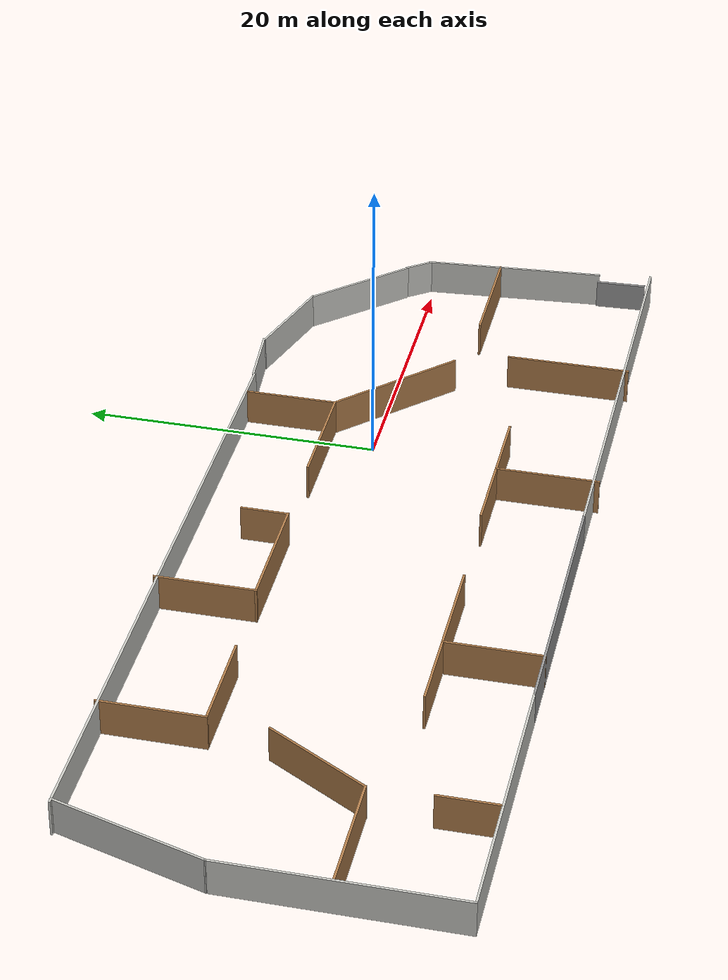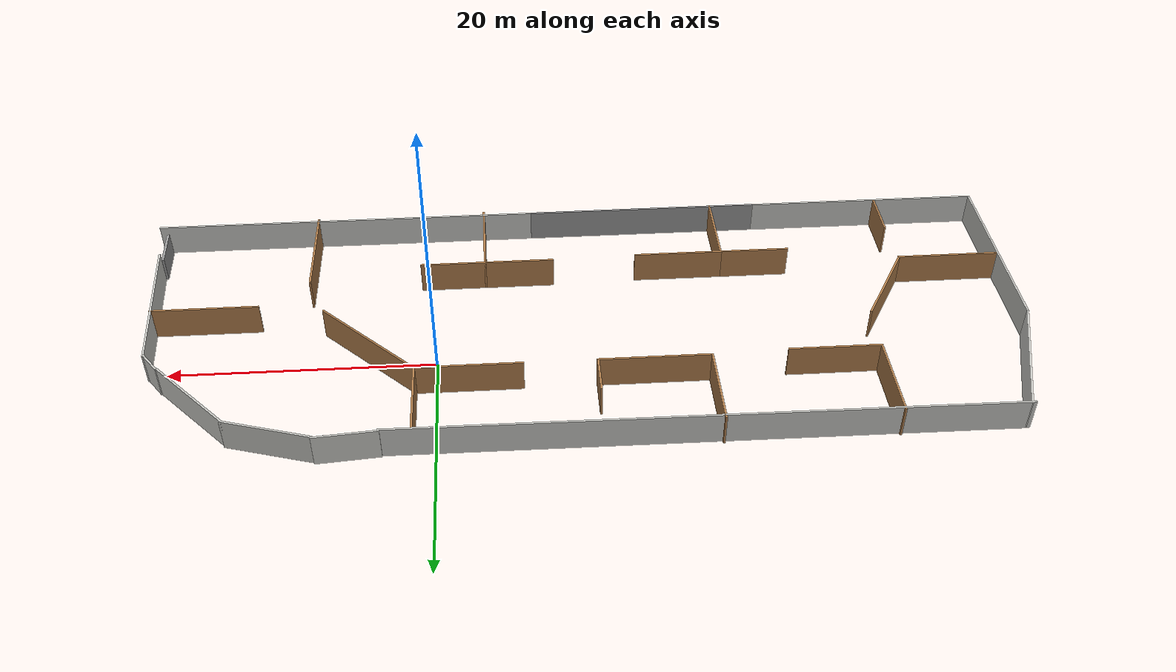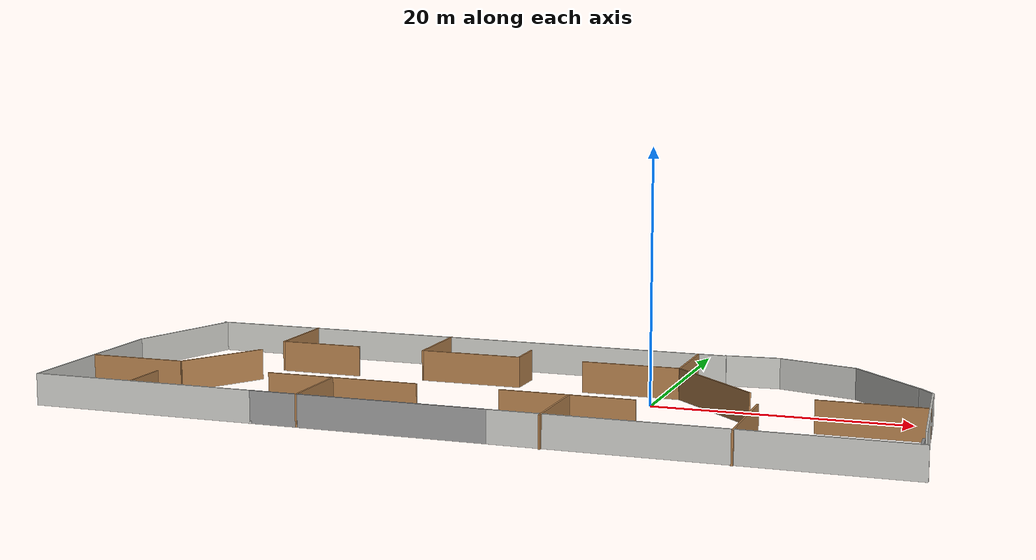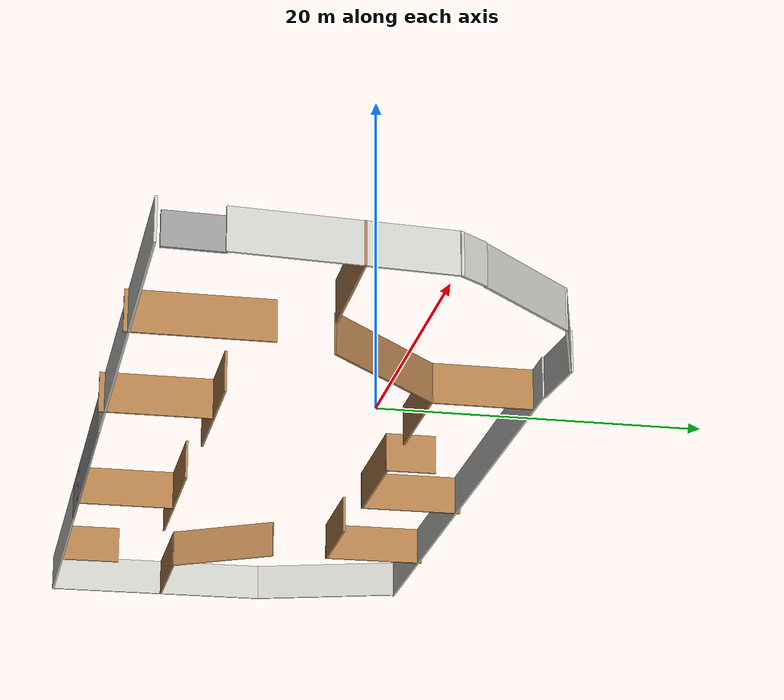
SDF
<?xml version='1.0'?>
<sdf version='1.6'>
  <model name='building_1st_floor'>
    <pose frame=''>-10.9973 -3.15186 0 0 -0 0</pose>
    <link name='Door_0'>
      <collision name='Door_0_Collision'>
        <geometry>
          <box>
            <size>3.46565 0.2 2</size>
          </box>
        </geometry>
        <pose frame=''>0 0 1 0 -0 0</pose>
      </collision>
      <visual name='Door_0_Visual'>
        <pose frame=''>0 0 1 0 -0 0</pose>
        <geometry>
          <box>
            <size>3.46565 0.2 2</size>
          </box>
        </geometry>
        <material>
          <script>
            <uri>file://media/materials/scripts/gazebo.material</uri>
            <name>Gazebo/Grey</name>
          </script>
        </material>
      </visual>
      <pose frame=''>33.0384 -10.5003 0 0 -0 1.61384</pose>
    </link>
    <link name='Wall_0'>
      <collision name='Wall_0_Collision'>
        <geometry>
          <box>
            <size>10.505 0.15 2.5</size>
          </box>
        </geometry>
        <pose frame=''>0 0 1.25 0 -0 0</pose>
      </collision>
      <visual name='Wall_0_Visual'>
        <pose frame=''>0 0 1.25 0 -0 0</pose>
        <geometry>
          <box>
            <size>10.505 0.15 2.5</size>
          </box>
        </geometry>
        <material>
          <script>
            <uri>file://media/materials/scripts/gazebo.material</uri>
            <name>Gazebo/CeilingTiled</name>
          </script>
          <ambient>1 1 1 1</ambient>
        </material>
        <meta>
          <layer>0</layer>
        </meta>
      </visual>
      <pose frame=''>-32.1544 7.76475 0 0 -0 1.2796</pose>
    </link>
    <link name='Wall_1'>
      <collision name='Wall_1_Collision'>
        <geometry>
          <box>
            <size>45.8467 0.15 2.5</size>
          </box>
        </geometry>
        <pose frame=''>0 0 1.25 0 -0 0</pose>
      </collision>
      <visual name='Wall_1_Visual'>
        <pose frame=''>0 0 1.25 0 -0 0</pose>
        <geometry>
          <box>
            <size>45.8467 0.15 2.5</size>
          </box>
        </geometry>
        <material>
          <script>
            <uri>file://media/materials/scripts/gazebo.material</uri>
            <name>Gazebo/CeilingTiled</name>
          </script>
          <ambient>1 1 1 1</ambient>
        </material>
        <meta>
          <layer>0</layer>
        </meta>
      </visual>
      <pose frame=''>-8.06761 12.564 0 0 0 -0.007014</pose>
    </link>
    <link name='Wall_10'>
      <collision name='Wall_10_Collision'>
        <geometry>
          <box>
            <size>18.5 0.15 2.5</size>
          </box>
        </geometry>
        <pose frame=''>0 0 1.25 0 -0 0</pose>
      </collision>
      <visual name='Wall_10_Visual'>
        <pose frame=''>0 0 1.25 0 -0 0</pose>
        <geometry>
          <box>
            <size>18.5 0.15 2.5</size>
          </box>
        </geometry>
        <material>
          <script>
            <uri>file://media/materials/scripts/gazebo.material</uri>
            <name>Gazebo/CeilingTiled</name>
          </script>
          <ambient>1 1 1 1</ambient>
        </material>
        <meta>
          <layer>0</layer>
        </meta>
      </visual>
      <pose frame=''>-24.4658 -12.5448 0 0 -0 0</pose>
    </link>
    <link name='Wall_11'>
      <collision name='Wall_11_Collision'>
        <geometry>
          <box>
            <size>18.75 0.15 2.5</size>
          </box>
        </geometry>
        <pose frame=''>0 0 1.25 0 -0 0</pose>
      </collision>
      <visual name='Wall_11_Visual'>
        <pose frame=''>0 0 1.25 0 -0 0</pose>
        <geometry>
          <box>
            <size>18.75 0.15 2.5</size>
          </box>
        </geometry>
        <material>
          <script>
            <uri>file://media/materials/scripts/gazebo.material</uri>
            <name>Gazebo/Grey</name>
          </script>
          <ambient>1 1 1 1</ambient>
        </material>
        <meta>
          <layer>0</layer>
        </meta>
      </visual>
      <pose frame=''>-5.99081 -12.5448 0 0 -0 0</pose>
    </link>
    <link name='Wall_12'>
      <collision name='Wall_12_Collision'>
        <geometry>
          <box>
            <size>30.5 0.15 2.5</size>
          </box>
        </geometry>
        <pose frame=''>0 0 1.25 0 -0 0</pose>
      </collision>
      <visual name='Wall_12_Visual'>
        <pose frame=''>0 0 1.25 0 -0 0</pose>
        <geometry>
          <box>
            <size>30.5 0.15 2.5</size>
          </box>
        </geometry>
        <material>
          <script>
            <uri>file://media/materials/scripts/gazebo.material</uri>
            <name>Gazebo/CeilingTiled</name>
          </script>
          <ambient>1 1 1 1</ambient>
        </material>
        <meta>
          <layer>0</layer>
        </meta>
      </visual>
      <pose frame=''>18.4842 -12.5448 0 0 -0 0</pose>
    </link>
    <link name='Wall_14'>
      <collision name='Wall_14_Collision'>
        <geometry>
          <box>
            <size>8 0.15 2.5</size>
          </box>
        </geometry>
        <pose frame=''>0 0 1.25 0 -0 0</pose>
      </collision>
      <visual name='Wall_14_Visual'>
        <pose frame=''>0 0 1.25 0 -0 0</pose>
        <geometry>
          <box>
            <size>8 0.15 2.5</size>
          </box>
        </geometry>
        <material>
          <script>
            <uri>file://media/materials/scripts/gazebo.material</uri>
            <name>Gazebo/Wood</name>
          </script>
          <ambient>1 1 1 1</ambient>
        </material>
        <meta>
          <layer>0</layer>
        </meta>
      </visual>
      <pose frame=''>-29.5657 -4.52536 0 0 -0 0</pose>
    </link>
    <link name='Wall_15'>
      <collision name='Wall_15_Collision'>
        <geometry>
          <box>
            <size>7.75 0.15 2.5</size>
          </box>
        </geometry>
        <pose frame=''>0 0 1.25 0 -0 0</pose>
      </collision>
      <visual name='Wall_15_Visual'>
        <pose frame=''>0 0 1.25 0 -0 0</pose>
        <geometry>
          <box>
            <size>7.75 0.15 2.5</size>
          </box>
        </geometry>
        <material>
          <script>
            <uri>file://media/materials/scripts/gazebo.material</uri>
            <name>Gazebo/Wood</name>
          </script>
          <ambient>1 1 1 1</ambient>
        </material>
        <meta>
          <layer>0</layer>
        </meta>
      </visual>
      <pose frame=''>-23.7407 -1.23446 0 0 -0 1.0472</pose>
    </link>
    <link name='Wall_17'>
      <collision name='Wall_17_Collision'>
        <geometry>
          <box>
            <size>7 0.15 2.5</size>
          </box>
        </geometry>
        <pose frame=''>0 0 1.25 0 -0 0</pose>
      </collision>
      <visual name='Wall_17_Visual'>
        <pose frame=''>0 0 1.25 0 -0 0</pose>
        <geometry>
          <box>
            <size>7 0.15 2.5</size>
          </box>
        </geometry>
        <material>
          <script>
            <uri>file://media/materials/scripts/gazebo.material</uri>
            <name>Gazebo/Wood</name>
          </script>
          <ambient>1 1 1 1</ambient>
        </material>
        <meta>
          <layer>0</layer>
        </meta>
      </visual>
      <pose frame=''>-21.6774 9.4005 0 0 0 -1.5708</pose>
    </link>
    <link name='Wall_18'>
      <collision name='Wall_18_Collision'>
        <geometry>
          <box>
            <size>7 0.15 2.5</size>
          </box>
        </geometry>
        <pose frame=''>0 0 1.25 0 -0 0</pose>
      </collision>
      <visual name='Wall_18_Visual'>
        <pose frame=''>0 0 1.25 0 -0 0</pose>
        <geometry>
          <box>
            <size>7 0.15 2.5</size>
          </box>
        </geometry>
        <material>
          <script>
            <uri>file://media/materials/scripts/gazebo.material</uri>
            <name>Gazebo/Wood</name>
          </script>
          <ambient>1 1 1 1</ambient>
        </material>
        <meta>
          <layer>0</layer>
        </meta>
      </visual>
      <pose frame=''>-18.2524 5.9755 0 0 -0 0</pose>
    </link>
    <link name='Wall_2'>
      <collision name='Wall_2_Collision'>
        <geometry>
          <box>
            <size>4.66779 0.15 2.5</size>
          </box>
        </geometry>
        <pose frame=''>0 0 1.25 0 -0 0</pose>
      </collision>
      <visual name='Wall_2_Visual'>
        <pose frame=''>0 0 1.25 0 -0 0</pose>
        <geometry>
          <box>
            <size>4.66779 0.15 2.5</size>
          </box>
        </geometry>
        <material>
          <script>
            <uri>file://media/materials/scripts/gazebo.material</uri>
            <name>Gazebo/CeilingTiled</name>
          </script>
          <ambient>1 1 1 1</ambient>
        </material>
        <meta>
          <layer>0</layer>
        </meta>
      </visual>
      <pose frame=''>17.0313 12.6845 0 0 -0 0.082946</pose>
    </link>
    <link name='Wall_20'>
      <collision name='Wall_20_Collision'>
        <geometry>
          <box>
            <size>6.75 0.15 2.5</size>
          </box>
        </geometry>
        <pose frame=''>0 0 1.25 0 -0 0</pose>
      </collision>
      <visual name='Wall_20_Visual'>
        <pose frame=''>0 0 1.25 0 -0 0</pose>
        <geometry>
          <box>
            <size>6.75 0.15 2.5</size>
          </box>
        </geometry>
        <material>
          <script>
            <uri>file://media/materials/scripts/gazebo.material</uri>
            <name>Gazebo/Wood</name>
          </script>
          <ambient>1 1 1 1</ambient>
        </material>
        <meta>
          <layer>0</layer>
        </meta>
      </visual>
      <pose frame=''>-9.12569 9.48049 0 0 -0 1.5708</pose>
    </link>
    <link name='Wall_22'>
      <collision name='Wall_22_Collision'>
        <geometry>
          <box>
            <size>8.5 0.15 2.5</size>
          </box>
        </geometry>
        <pose frame=''>0 0 1.25 0 -0 0</pose>
      </collision>
      <visual name='Wall_22_Visual'>
        <pose frame=''>0 0 1.25 0 -0 0</pose>
        <geometry>
          <box>
            <size>8.5 0.15 2.5</size>
          </box>
        </geometry>
        <material>
          <script>
            <uri>file://media/materials/scripts/gazebo.material</uri>
            <name>Gazebo/Wood</name>
          </script>
          <ambient>1 1 1 1</ambient>
        </material>
        <meta>
          <layer>0</layer>
        </meta>
      </visual>
      <pose frame=''>-4.95069 6.18049 0 0 -0 0</pose>
    </link>
    <link name='Wall_24'>
      <collision name='Wall_24_Collision'>
        <geometry>
          <box>
            <size>3.25 0.15 2.5</size>
          </box>
        </geometry>
        <pose frame=''>0 0 1.25 0 -0 0</pose>
      </collision>
      <visual name='Wall_24_Visual'>
        <pose frame=''>0 0 1.25 0 -0 0</pose>
        <geometry>
          <box>
            <size>3.25 0.15 2.5</size>
          </box>
        </geometry>
        <material>
          <script>
            <uri>file://media/materials/scripts/gazebo.material</uri>
            <name>Gazebo/Wood</name>
          </script>
          <ambient>1 1 1 1</ambient>
        </material>
        <meta>
          <layer>0</layer>
        </meta>
      </visual>
      <pose frame=''>-0.775684 7.73049 0 0 -0 1.5708</pose>
    </link>
    <link name='Wall_26'>
      <collision name='Wall_26_Collision'>
        <geometry>
          <box>
            <size>4 0.15 2.5</size>
          </box>
        </geometry>
        <pose frame=''>0 0 1.25 0 -0 0</pose>
      </collision>
      <visual name='Wall_26_Visual'>
        <pose frame=''>0 0 1.25 0 -0 0</pose>
        <geometry>
          <box>
            <size>4 0.15 2.5</size>
          </box>
        </geometry>
        <material>
          <script>
            <uri>file://media/materials/scripts/gazebo.material</uri>
            <name>Gazebo/Wood</name>
          </script>
          <ambient>1 1 1 1</ambient>
        </material>
        <meta>
          <layer>0</layer>
        </meta>
      </visual>
      <pose frame=''>-25.4899 -10.5207 0 0 0 -1.5708</pose>
    </link>
    <link name='Wall_28'>
      <collision name='Wall_28_Collision'>
        <geometry>
          <box>
            <size>6.5 0.15 2.5</size>
          </box>
        </geometry>
        <pose frame=''>0 0 1.25 0 -0 0</pose>
      </collision>
      <visual name='Wall_28_Visual'>
        <pose frame=''>0 0 1.25 0 -0 0</pose>
        <geometry>
          <box>
            <size>6.5 0.15 2.5</size>
          </box>
        </geometry>
        <material>
          <script>
            <uri>file://media/materials/scripts/gazebo.material</uri>
            <name>Gazebo/Wood</name>
          </script>
          <ambient>1 1 1 1</ambient>
        </material>
        <meta>
          <layer>0</layer>
        </meta>
      </visual>
      <pose frame=''>-11.5792 -9.37993 0 0 -0 1.5708</pose>
    </link>
    <link name='Wall_29'>
      <collision name='Wall_29_Collision'>
        <geometry>
          <box>
            <size>5.5 0.15 2.5</size>
          </box>
        </geometry>
        <pose frame=''>0 0 1.25 0 -0 0</pose>
      </collision>
      <visual name='Wall_29_Visual'>
        <pose frame=''>0 0 1.25 0 -0 0</pose>
        <geometry>
          <box>
            <size>5.5 0.15 2.5</size>
          </box>
        </geometry>
        <material>
          <script>
            <uri>file://media/materials/scripts/gazebo.material</uri>
            <name>Gazebo/Wood</name>
          </script>
          <ambient>1 1 1 1</ambient>
        </material>
        <meta>
          <layer>0</layer>
        </meta>
      </visual>
      <pose frame=''>-14.2542 -6.20493 0 0 -0 3.14159</pose>
    </link>
    <link name='Wall_3'>
      <collision name='Wall_3_Collision'>
        <geometry>
          <box>
            <size>6.8217 0.15 2.5</size>
          </box>
        </geometry>
        <pose frame=''>0 0 1.25 0 -0 0</pose>
      </collision>
      <visual name='Wall_3_Visual'>
        <pose frame=''>0 0 1.25 0 -0 0</pose>
        <geometry>
          <box>
            <size>6.8217 0.15 2.5</size>
          </box>
        </geometry>
        <material>
          <script>
            <uri>file://media/materials/scripts/gazebo.material</uri>
            <name>Gazebo/CeilingTiled</name>
          </script>
          <ambient>1 1 1 1</ambient>
        </material>
        <meta>
          <layer>0</layer>
        </meta>
      </visual>
      <pose frame=''>22.474 11.8077 0 0 0 -0.295151</pose>
    </link>
    <link name='Wall_31'>
      <collision name='Wall_31_Collision'>
        <geometry>
          <box>
            <size>7 0.15 2.5</size>
          </box>
        </geometry>
        <pose frame=''>0 0 1.25 0 -0 0</pose>
      </collision>
      <visual name='Wall_31_Visual'>
        <pose frame=''>0 0 1.25 0 -0 0</pose>
        <geometry>
          <box>
            <size>7 0.15 2.5</size>
          </box>
        </geometry>
        <material>
          <script>
            <uri>file://media/materials/scripts/gazebo.material</uri>
            <name>Gazebo/Wood</name>
          </script>
          <ambient>1 1 1 1</ambient>
        </material>
        <meta>
          <layer>0</layer>
        </meta>
      </visual>
      <pose frame=''>-8.15422 -6.20493 0 0 -0 0</pose>
    </link>
    <link name='Wall_33'>
      <collision name='Wall_33_Collision'>
        <geometry>
          <box>
            <size>10.5 0.15 2.5</size>
          </box>
        </geometry>
        <pose frame=''>0 0 1.25 0 -0 0</pose>
      </collision>
      <visual name='Wall_33_Visual'>
        <pose frame=''>0 0 1.25 0 -0 0</pose>
        <geometry>
          <box>
            <size>10.5 0.15 2.5</size>
          </box>
        </geometry>
        <material>
          <script>
            <uri>file://media/materials/scripts/gazebo.material</uri>
            <name>Gazebo/Wood</name>
          </script>
          <ambient>1 1 1 1</ambient>
        </material>
        <meta>
          <layer>0</layer>
        </meta>
      </visual>
      <pose frame=''>7.07841 -6.02763 0 0 -0 0</pose>
    </link>
    <link name='Wall_35'>
      <collision name='Wall_35_Collision'>
        <geometry>
          <box>
            <size>7 0.15 2.5</size>
          </box>
        </geometry>
        <pose frame=''>0 0 1.25 0 -0 0</pose>
      </collision>
      <visual name='Wall_35_Visual'>
        <pose frame=''>0 0 1.25 0 -0 0</pose>
        <geometry>
          <box>
            <size>7 0.15 2.5</size>
          </box>
        </geometry>
        <material>
          <script>
            <uri>file://media/materials/scripts/gazebo.material</uri>
            <name>Gazebo/Wood</name>
          </script>
          <ambient>1 1 1 1</ambient>
        </material>
        <meta>
          <layer>0</layer>
        </meta>
      </visual>
      <pose frame=''>7.25366 -9.45263 0 0 0 -1.5708</pose>
    </link>
    <link name='Wall_37'>
      <collision name='Wall_37_Collision'>
        <geometry>
          <box>
            <size>8.5 0.15 2.5</size>
          </box>
        </geometry>
        <pose frame=''>0 0 1.25 0 -0 0</pose>
      </collision>
      <visual name='Wall_37_Visual'>
        <pose frame=''>0 0 1.25 0 -0 0</pose>
        <geometry>
          <box>
            <size>8.5 0.15 2.5</size>
          </box>
        </geometry>
        <material>
          <script>
            <uri>file://media/materials/scripts/gazebo.material</uri>
            <name>Gazebo/Wood</name>
          </script>
          <ambient>1 1 1 1</ambient>
        </material>
        <meta>
          <layer>0</layer>
        </meta>
      </visual>
      <pose frame=''>20.8433 -8.59394 0 0 -0 1.5708</pose>
    </link>
    <link name='Wall_39'>
      <collision name='Wall_39_Collision'>
        <geometry>
          <box>
            <size>8.25 0.15 2.5</size>
          </box>
        </geometry>
        <pose frame=''>0 0 1.25 0 -0 0</pose>
      </collision>
      <visual name='Wall_39_Visual'>
        <pose frame=''>0 0 1.25 0 -0 0</pose>
        <geometry>
          <box>
            <size>8.25 0.15 2.5</size>
          </box>
        </geometry>
        <material>
          <script>
            <uri>file://media/materials/scripts/gazebo.material</uri>
            <name>Gazebo/Wood</name>
          </script>
          <ambient>1 1 1 1</ambient>
        </material>
        <meta>
          <layer>0</layer>
        </meta>
      </visual>
      <pose frame=''>28.5638 -1.64042 0 0 -0 3.14159</pose>
    </link>
    <link name='Wall_4'>
      <collision name='Wall_4_Collision'>
        <geometry>
          <box>
            <size>8.06236 0.15 2.5</size>
          </box>
        </geometry>
        <pose frame=''>0 0 1.25 0 -0 0</pose>
      </collision>
      <visual name='Wall_4_Visual'>
        <pose frame=''>0 0 1.25 0 -0 0</pose>
        <geometry>
          <box>
            <size>8.06236 0.15 2.5</size>
          </box>
        </geometry>
        <material>
          <script>
            <uri>file://media/materials/scripts/gazebo.material</uri>
            <name>Gazebo/CeilingTiled</name>
          </script>
          <ambient>1 1 1 1</ambient>
        </material>
        <meta>
          <layer>0</layer>
        </meta>
      </visual>
      <pose frame=''>28.2721 7.93451 0 0 0 -0.823844</pose>
    </link>
    <link name='Wall_41'>
      <collision name='Wall_41_Collision'>
        <geometry>
          <box>
            <size>8 0.15 2.5</size>
          </box>
        </geometry>
        <pose frame=''>0 0 1.25 0 -0 0</pose>
      </collision>
      <visual name='Wall_41_Visual'>
        <pose frame=''>0 0 1.25 0 -0 0</pose>
        <geometry>
          <box>
            <size>8 0.15 2.5</size>
          </box>
        </geometry>
        <material>
          <script>
            <uri>file://media/materials/scripts/gazebo.material</uri>
            <name>Gazebo/Wood</name>
          </script>
          <ambient>1 1 1 1</ambient>
        </material>
        <meta>
          <layer>0</layer>
        </meta>
      </visual>
      <pose frame=''>8.61054 6.17094 0 0 -0 0</pose>
    </link>
    <link name='Wall_42'>
      <collision name='Wall_42_Collision'>
        <geometry>
          <box>
            <size>6.25 0.15 2.5</size>
          </box>
        </geometry>
        <pose frame=''>0 0 1.25 0 -0 0</pose>
      </collision>
      <visual name='Wall_42_Visual'>
        <pose frame=''>0 0 1.25 0 -0 0</pose>
        <geometry>
          <box>
            <size>6.25 0.15 2.5</size>
          </box>
        </geometry>
        <material>
          <script>
            <uri>file://media/materials/scripts/gazebo.material</uri>
            <name>Gazebo/Wood</name>
          </script>
          <ambient>1 1 1 1</ambient>
        </material>
        <meta>
          <layer>0</layer>
        </meta>
      </visual>
      <pose frame=''>12.5355 9.22094 0 0 -0 1.5708</pose>
    </link>
    <link name='Wall_44'>
      <collision name='Wall_44_Collision'>
        <geometry>
          <box>
            <size>10 0.15 2.5</size>
          </box>
        </geometry>
        <pose frame=''>0 0 1.25 0 -0 0</pose>
      </collision>
      <visual name='Wall_44_Visual'>
        <pose frame=''>0 0 1.25 0 -0 0</pose>
        <geometry>
          <box>
            <size>10 0.15 2.5</size>
          </box>
        </geometry>
        <material>
          <script>
            <uri>file://media/materials/scripts/gazebo.material</uri>
            <name>Gazebo/Wood</name>
          </script>
          <ambient>1 1 1 1</ambient>
        </material>
        <meta>
          <layer>0</layer>
        </meta>
      </visual>
      <pose frame=''>16.018 2.68844 0 0 0 -0.785398</pose>
    </link>
    <link name='Wall_5'>
      <collision name='Wall_5_Collision'>
        <geometry>
          <box>
            <size>2.11094 0.15 2.5</size>
          </box>
        </geometry>
        <pose frame=''>0 0 1.25 0 -0 0</pose>
      </collision>
      <visual name='Wall_5_Visual'>
        <pose frame=''>0 0 1.25 0 -0 0</pose>
        <geometry>
          <box>
            <size>2.11094 0.15 2.5</size>
          </box>
        </geometry>
        <material>
          <script>
            <uri>file://media/materials/scripts/gazebo.material</uri>
            <name>Gazebo/CeilingTiled</name>
          </script>
          <ambient>1 1 1 1</ambient>
        </material>
        <meta>
          <layer>0</layer>
        </meta>
      </visual>
      <pose frame=''>31.6213 4.24108 0 0 0 -0.937846</pose>
    </link>
    <link name='Wall_6'>
      <collision name='Wall_6_Collision'>
        <geometry>
          <box>
            <size>12.5496 0.15 2.5</size>
          </box>
        </geometry>
        <pose frame=''>0 0 1.25 0 -0 0</pose>
      </collision>
      <visual name='Wall_6_Visual'>
        <pose frame=''>0 0 1.25 0 -0 0</pose>
        <geometry>
          <box>
            <size>12.5496 0.15 2.5</size>
          </box>
        </geometry>
        <material>
          <script>
            <uri>file://media/materials/scripts/gazebo.material</uri>
            <name>Gazebo/CeilingTiled</name>
          </script>
          <ambient>1 1 1 1</ambient>
        </material>
        <meta>
          <layer>0</layer>
        </meta>
      </visual>
      <pose frame=''>32.6637 -2.63896 0 0 0 -1.49614</pose>
    </link>
    <link name='Wall_9'>
      <collision name='Wall_9_Collision'>
        <geometry>
          <box>
            <size>15.5 0.15 2.5</size>
          </box>
        </geometry>
        <pose frame=''>0 0 1.25 0 -0 0</pose>
      </collision>
      <visual name='Wall_9_Visual'>
        <pose frame=''>0 0 1.25 0 -0 0</pose>
        <geometry>
          <box>
            <size>15.5 0.15 2.5</size>
          </box>
        </geometry>
        <material>
          <script>
            <uri>file://media/materials/scripts/gazebo.material</uri>
            <name>Gazebo/CeilingTiled</name>
          </script>
          <ambient>1 1 1 1</ambient>
        </material>
        <meta>
          <layer>0</layer>
        </meta>
      </visual>
      <pose frame=''>-33.6408 -4.86979 0 0 0 -1.5708</pose>
    </link>
    <static>1</static>
  </model>
</sdf>
